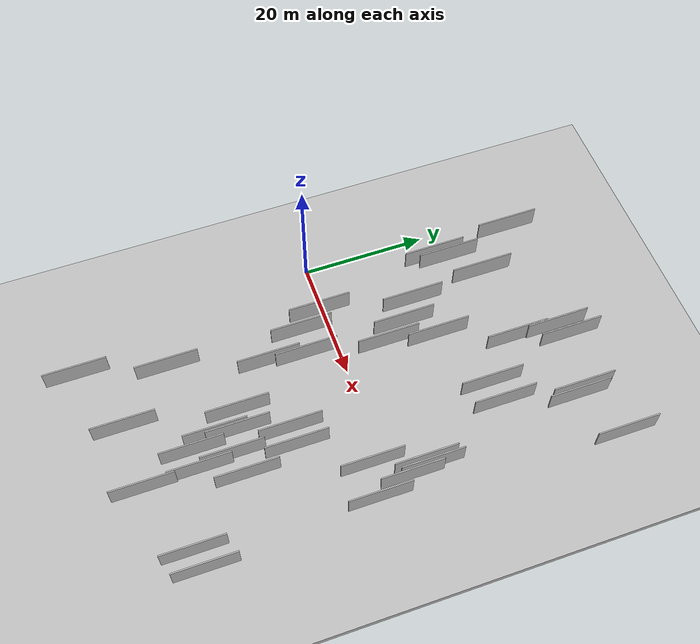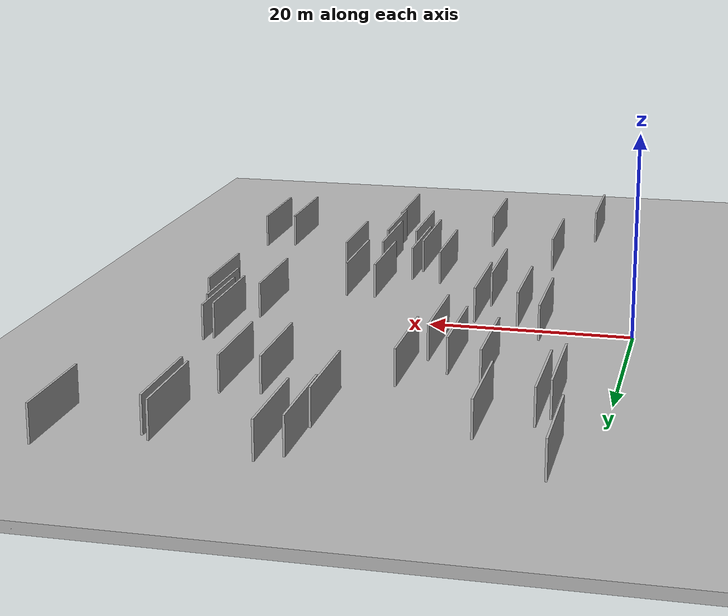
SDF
<?xml version="1.0" encoding="utf-8"?>

<sdf version="1.6">

   <world name="default">

      <gui fullscreen="0">

         <camera name="user_camera">

            <pose>-15 0 4.57585 0 0 0</pose>

            <view_controller>orbit</view_controller>

         </camera>

      </gui>

      <scene>

         <sky>

           <clouds>

             <speed>12</speed>

           </clouds>

         </sky>

         <ambient>0.4 0.4 0.4 1</ambient>

         <background>0.7 0.7 0.7 1</background>

         <shadows>1</shadows>

      </scene>

      <gravity>0 0 -9.8066</gravity>

      <magnetic_field>6e-06 2.3e-05 -4.2e-05</magnetic_field>

      <physics default="0" name="default_physics" type="ode">

         <ode>

            <solver>

               <type>quick</type>

               <iters>10</iters>

               <sor>1.0</sor>

               <use_dynamic_moi_rescaling>0</use_dynamic_moi_rescaling>

            </solver>

            <constraints>

               <cfm>0</cfm>

               <erp>0.2</erp>

               <contact_max_correcting_vel>100</contact_max_correcting_vel>

               <contact_surface_layer>0.001</contact_surface_layer>

            </constraints>

         </ode>

         <max_step_size>0.004</max_step_size>

         <real_time_factor>1</real_time_factor>

         <real_time_update_rate>250</real_time_update_rate>

      </physics>

      <light name="sun" type="directional">

         <cast_shadows>1</cast_shadows>

         <pose>0 0 10 0 0 0</pose>

         <diffuse>0.8 0.8 0.8 1</diffuse>

         <specular>0.2 0.2 0.2 1</specular>

         <attenuation>

            <range>1000</range>

            <constant>0.9</constant>

            <linear>0.01</linear>

            <quadratic>0.001</quadratic>

         </attenuation>

         <direction>-0.5 0.1 -0.9</direction>

      </light>

      <include>

         <name>ground_plane_1</name>

         <uri>model://HANNAS_ground_plane</uri>

         <pose>0 0 0  0 0 0</pose>

      </include>

      <include>

         <name>ground_plane_2</name>

         <uri>model://HANNAS_ground_plane</uri>

         <pose>100 0 0  0 0 0</pose>

      </include>

      <model name="HANNAS_wall_1">

         <static>1</static>

         <pose frame="">17.6452 7.7032 0.0 0.000000 0.000000 1.570796</pose>

         <link name="link">

            <pose frame="">0 0 2.00 0 0 0</pose>

            <collision name="collision">

               <geometry>

                  <box>

                     <size>10.00 0.2 4.00</size>

                  </box>

               </geometry>

               <max_contacts>10</max_contacts>

               <surface>

                  <contact>

                     <ode/>

                  </contact>

                  <bounce/>

                  <friction>

                     <torsional>

                        <ode/>

                     </torsional>

                     <ode/>

                  </friction>

               </surface>

            </collision>

            <visual name="visual">

               <cast_shadows>0</cast_shadows>

               <geometry>

                  <box>

                     <size>10.00 0.2 4.00</size>

                  </box>

               </geometry>

               <material>

                  <script>

                     <uri>model://HANNAS_wall/materials/scripts</uri>

                     <uri>model://HANNAS_wall/materials/textures</uri>

                     <name>vrc/HANNAS_wall</name>

                  </script>

               </material>

            </visual>

            <self_collide>0</self_collide>

            <enable_wind>0</enable_wind>

            <kinematic>0</kinematic>

         </link>

      </model>

      <model name="HANNAS_wall_2">

         <static>1</static>

         <pose frame="">29.3369 -34.7402 0.0 0.000000 0.000000 1.570796</pose>

         <link name="link">

            <pose frame="">0 0 2.00 0 0 0</pose>

            <collision name="collision">

               <geometry>

                  <box>

                     <size>10.00 0.2 4.00</size>

                  </box>

               </geometry>

               <max_contacts>10</max_contacts>

               <surface>

                  <contact>

                     <ode/>

                  </contact>

                  <bounce/>

                  <friction>

                     <torsional>

                        <ode/>

                     </torsional>

                     <ode/>

                  </friction>

               </surface>

            </collision>

            <visual name="visual">

               <cast_shadows>0</cast_shadows>

               <geometry>

                  <box>

                     <size>10.00 0.2 4.00</size>

                  </box>

               </geometry>

               <material>

                  <script>

                     <uri>model://HANNAS_wall/materials/scripts</uri>

                     <uri>model://HANNAS_wall/materials/textures</uri>

                     <name>vrc/HANNAS_wall</name>

                  </script>

               </material>

            </visual>

            <self_collide>0</self_collide>

            <enable_wind>0</enable_wind>

            <kinematic>0</kinematic>

         </link>

      </model>

      <model name="HANNAS_wall_3">

         <static>1</static>

         <pose frame="">10.5927 -26.1240 0.0 0.000000 0.000000 1.570796</pose>

         <link name="link">

            <pose frame="">0 0 2.00 0 0 0</pose>

            <collision name="collision">

               <geometry>

                  <box>

                     <size>10.00 0.2 4.00</size>

                  </box>

               </geometry>

               <max_contacts>10</max_contacts>

               <surface>

                  <contact>

                     <ode/>

                  </contact>

                  <bounce/>

                  <friction>

                     <torsional>

                        <ode/>

                     </torsional>

                     <ode/>

                  </friction>

               </surface>

            </collision>

            <visual name="visual">

               <cast_shadows>0</cast_shadows>

               <geometry>

                  <box>

                     <size>10.00 0.2 4.00</size>

                  </box>

               </geometry>

               <material>

                  <script>

                     <uri>model://HANNAS_wall/materials/scripts</uri>

                     <uri>model://HANNAS_wall/materials/textures</uri>

                     <name>vrc/HANNAS_wall</name>

                  </script>

               </material>

            </visual>

            <self_collide>0</self_collide>

            <enable_wind>0</enable_wind>

            <kinematic>0</kinematic>

         </link>

      </model>

      <model name="HANNAS_wall_4">

         <static>1</static>

         <pose frame="">39.8284 6.3631 0.0 0.000000 0.000000 1.570796</pose>

         <link name="link">

            <pose frame="">0 0 2.00 0 0 0</pose>

            <collision name="collision">

               <geometry>

                  <box>

                     <size>10.00 0.2 4.00</size>

                  </box>

               </geometry>

               <max_contacts>10</max_contacts>

               <surface>

                  <contact>

                     <ode/>

                  </contact>

                  <bounce/>

                  <friction>

                     <torsional>

                        <ode/>

                     </torsional>

                     <ode/>

                  </friction>

               </surface>

            </collision>

            <visual name="visual">

               <cast_shadows>0</cast_shadows>

               <geometry>

                  <box>

                     <size>10.00 0.2 4.00</size>

                  </box>

               </geometry>

               <material>

                  <script>

                     <uri>model://HANNAS_wall/materials/scripts</uri>

                     <uri>model://HANNAS_wall/materials/textures</uri>

                     <name>vrc/HANNAS_wall</name>

                  </script>

               </material>

            </visual>

            <self_collide>0</self_collide>

            <enable_wind>0</enable_wind>

            <kinematic>0</kinematic>

         </link>

      </model>

      <model name="HANNAS_wall_5">

         <static>1</static>

         <pose frame="">11.6787 14.0342 0.0 0.000000 0.000000 1.570796</pose>

         <link name="link">

            <pose frame="">0 0 2.00 0 0 0</pose>

            <collision name="collision">

               <geometry>

                  <box>

                     <size>10.00 0.2 4.00</size>

                  </box>

               </geometry>

               <max_contacts>10</max_contacts>

               <surface>

                  <contact>

                     <ode/>

                  </contact>

                  <bounce/>

                  <friction>

                     <torsional>

                        <ode/>

                     </torsional>

                     <ode/>

                  </friction>

               </surface>

            </collision>

            <visual name="visual">

               <cast_shadows>0</cast_shadows>

               <geometry>

                  <box>

                     <size>10.00 0.2 4.00</size>

                  </box>

               </geometry>

               <material>

                  <script>

                     <uri>model://HANNAS_wall/materials/scripts</uri>

                     <uri>model://HANNAS_wall/materials/textures</uri>

                     <name>vrc/HANNAS_wall</name>

                  </script>

               </material>

            </visual>

            <self_collide>0</self_collide>

            <enable_wind>0</enable_wind>

            <kinematic>0</kinematic>

         </link>

      </model>

      <model name="HANNAS_wall_6">

         <static>1</static>

         <pose frame="">7.2772 -39.6710 0.0 0.000000 0.000000 1.570796</pose>

         <link name="link">

            <pose frame="">0 0 2.00 0 0 0</pose>

            <collision name="collision">

               <geometry>

                  <box>

                     <size>10.00 0.2 4.00</size>

                  </box>

               </geometry>

               <max_contacts>10</max_contacts>

               <surface>

                  <contact>

                     <ode/>

                  </contact>

                  <bounce/>

                  <friction>

                     <torsional>

                        <ode/>

                     </torsional>

                     <ode/>

                  </friction>

               </surface>

            </collision>

            <visual name="visual">

               <cast_shadows>0</cast_shadows>

               <geometry>

                  <box>

                     <size>10.00 0.2 4.00</size>

                  </box>

               </geometry>

               <material>

                  <script>

                     <uri>model://HANNAS_wall/materials/scripts</uri>

                     <uri>model://HANNAS_wall/materials/textures</uri>

                     <name>vrc/HANNAS_wall</name>

                  </script>

               </material>

            </visual>

            <self_collide>0</self_collide>

            <enable_wind>0</enable_wind>

            <kinematic>0</kinematic>

         </link>

      </model>

      <model name="HANNAS_wall_7">

         <static>1</static>

         <pose frame="">27.1532 -11.4824 0.0 0.000000 0.000000 1.570796</pose>

         <link name="link">

            <pose frame="">0 0 2.00 0 0 0</pose>

            <collision name="collision">

               <geometry>

                  <box>

                     <size>10.00 0.2 4.00</size>

                  </box>

               </geometry>

               <max_contacts>10</max_contacts>

               <surface>

                  <contact>

                     <ode/>

                  </contact>

                  <bounce/>

                  <friction>

                     <torsional>

                        <ode/>

                     </torsional>

                     <ode/>

                  </friction>

               </surface>

            </collision>

            <visual name="visual">

               <cast_shadows>0</cast_shadows>

               <geometry>

                  <box>

                     <size>10.00 0.2 4.00</size>

                  </box>

               </geometry>

               <material>

                  <script>

                     <uri>model://HANNAS_wall/materials/scripts</uri>

                     <uri>model://HANNAS_wall/materials/textures</uri>

                     <name>vrc/HANNAS_wall</name>

                  </script>

               </material>

            </visual>

            <self_collide>0</self_collide>

            <enable_wind>0</enable_wind>

            <kinematic>0</kinematic>

         </link>

      </model>

      <model name="HANNAS_wall_8">

         <static>1</static>

         <pose frame="">21.5751 -18.0742 0.0 0.000000 0.000000 1.570796</pose>

         <link name="link">

            <pose frame="">0 0 2.00 0 0 0</pose>

            <collision name="collision">

               <geometry>

                  <box>

                     <size>10.00 0.2 4.00</size>

                  </box>

               </geometry>

               <max_contacts>10</max_contacts>

               <surface>

                  <contact>

                     <ode/>

                  </contact>

                  <bounce/>

                  <friction>

                     <torsional>

                        <ode/>

                     </torsional>

                     <ode/>

                  </friction>

               </surface>

            </collision>

            <visual name="visual">

               <cast_shadows>0</cast_shadows>

               <geometry>

                  <box>

                     <size>10.00 0.2 4.00</size>

                  </box>

               </geometry>

               <material>

                  <script>

                     <uri>model://HANNAS_wall/materials/scripts</uri>

                     <uri>model://HANNAS_wall/materials/textures</uri>

                     <name>vrc/HANNAS_wall</name>

                  </script>

               </material>

            </visual>

            <self_collide>0</self_collide>

            <enable_wind>0</enable_wind>

            <kinematic>0</kinematic>

         </link>

      </model>

      <model name="HANNAS_wall_9">

         <static>1</static>

         <pose frame="">24.7497 -18.9632 0.0 0.000000 0.000000 1.570796</pose>

         <link name="link">

            <pose frame="">0 0 2.00 0 0 0</pose>

            <collision name="collision">

               <geometry>

                  <box>

                     <size>10.00 0.2 4.00</size>

                  </box>

               </geometry>

               <max_contacts>10</max_contacts>

               <surface>

                  <contact>

                     <ode/>

                  </contact>

                  <bounce/>

                  <friction>

                     <torsional>

                        <ode/>

                     </torsional>

                     <ode/>

                  </friction>

               </surface>

            </collision>

            <visual name="visual">

               <cast_shadows>0</cast_shadows>

               <geometry>

                  <box>

                     <size>10.00 0.2 4.00</size>

                  </box>

               </geometry>

               <material>

                  <script>

                     <uri>model://HANNAS_wall/materials/scripts</uri>

                     <uri>model://HANNAS_wall/materials/textures</uri>

                     <name>vrc/HANNAS_wall</name>

                  </script>

               </material>

            </visual>

            <self_collide>0</self_collide>

            <enable_wind>0</enable_wind>

            <kinematic>0</kinematic>

         </link>

      </model>

      <model name="HANNAS_wall_10">

         <static>1</static>

         <pose frame="">3.2504 34.0008 0.0 0.000000 0.000000 1.570796</pose>

         <link name="link">

            <pose frame="">0 0 2.00 0 0 0</pose>

            <collision name="collision">

               <geometry>

                  <box>

                     <size>10.00 0.2 4.00</size>

                  </box>

               </geometry>

               <max_contacts>10</max_contacts>

               <surface>

                  <contact>

                     <ode/>

                  </contact>

                  <bounce/>

                  <friction>

                     <torsional>

                        <ode/>

                     </torsional>

                     <ode/>

                  </friction>

               </surface>

            </collision>

            <visual name="visual">

               <cast_shadows>0</cast_shadows>

               <geometry>

                  <box>

                     <size>10.00 0.2 4.00</size>

                  </box>

               </geometry>

               <material>

                  <script>

                     <uri>model://HANNAS_wall/materials/scripts</uri>

                     <uri>model://HANNAS_wall/materials/textures</uri>

                     <name>vrc/HANNAS_wall</name>

                  </script>

               </material>

            </visual>

            <self_collide>0</self_collide>

            <enable_wind>0</enable_wind>

            <kinematic>0</kinematic>

         </link>

      </model>

      <model name="HANNAS_wall_11">

         <static>1</static>

         <pose frame="">24.2632 -22.3150 0.0 0.000000 0.000000 1.570796</pose>

         <link name="link">

            <pose frame="">0 0 2.00 0 0 0</pose>

            <collision name="collision">

               <geometry>

                  <box>

                     <size>10.00 0.2 4.00</size>

                  </box>

               </geometry>

               <max_contacts>10</max_contacts>

               <surface>

                  <contact>

                     <ode/>

                  </contact>

                  <bounce/>

                  <friction>

                     <torsional>

                        <ode/>

                     </torsional>

                     <ode/>

                  </friction>

               </surface>

            </collision>

            <visual name="visual">

               <cast_shadows>0</cast_shadows>

               <geometry>

                  <box>

                     <size>10.00 0.2 4.00</size>

                  </box>

               </geometry>

               <material>

                  <script>

                     <uri>model://HANNAS_wall/materials/scripts</uri>

                     <uri>model://HANNAS_wall/materials/textures</uri>

                     <name>vrc/HANNAS_wall</name>

                  </script>

               </material>

            </visual>

            <self_collide>0</self_collide>

            <enable_wind>0</enable_wind>

            <kinematic>0</kinematic>

         </link>

      </model>

      <model name="HANNAS_wall_12">

         <static>1</static>

         <pose frame="">41.0573 -30.3732 0.0 0.000000 0.000000 1.570796</pose>

         <link name="link">

            <pose frame="">0 0 2.00 0 0 0</pose>

            <collision name="collision">

               <geometry>

                  <box>

                     <size>10.00 0.2 4.00</size>

                  </box>

               </geometry>

               <max_contacts>10</max_contacts>

               <surface>

                  <contact>

                     <ode/>

                  </contact>

                  <bounce/>

                  <friction>

                     <torsional>

                        <ode/>

                     </torsional>

                     <ode/>

                  </friction>

               </surface>

            </collision>

            <visual name="visual">

               <cast_shadows>0</cast_shadows>

               <geometry>

                  <box>

                     <size>10.00 0.2 4.00</size>

                  </box>

               </geometry>

               <material>

                  <script>

                     <uri>model://HANNAS_wall/materials/scripts</uri>

                     <uri>model://HANNAS_wall/materials/textures</uri>

                     <name>vrc/HANNAS_wall</name>

                  </script>

               </material>

            </visual>

            <self_collide>0</self_collide>

            <enable_wind>0</enable_wind>

            <kinematic>0</kinematic>

         </link>

      </model>

      <model name="HANNAS_wall_13">

         <static>1</static>

         <pose frame="">25.8757 -26.3739 0.0 0.000000 0.000000 1.570796</pose>

         <link name="link">

            <pose frame="">0 0 2.00 0 0 0</pose>

            <collision name="collision">

               <geometry>

                  <box>

                     <size>10.00 0.2 4.00</size>

                  </box>

               </geometry>

               <max_contacts>10</max_contacts>

               <surface>

                  <contact>

                     <ode/>

                  </contact>

                  <bounce/>

                  <friction>

                     <torsional>

                        <ode/>

                     </torsional>

                     <ode/>

                  </friction>

               </surface>

            </collision>

            <visual name="visual">

               <cast_shadows>0</cast_shadows>

               <geometry>

                  <box>

                     <size>10.00 0.2 4.00</size>

                  </box>

               </geometry>

               <material>

                  <script>

                     <uri>model://HANNAS_wall/materials/scripts</uri>

                     <uri>model://HANNAS_wall/materials/textures</uri>

                     <name>vrc/HANNAS_wall</name>

                  </script>

               </material>

            </visual>

            <self_collide>0</self_collide>

            <enable_wind>0</enable_wind>

            <kinematic>0</kinematic>

         </link>

      </model>

      <model name="HANNAS_wall_14">

         <static>1</static>

         <pose frame="">44.5203 35.6101 0.0 0.000000 0.000000 1.570796</pose>

         <link name="link">

            <pose frame="">0 0 2.00 0 0 0</pose>

            <collision name="collision">

               <geometry>

                  <box>

                     <size>10.00 0.2 4.00</size>

                  </box>

               </geometry>

               <max_contacts>10</max_contacts>

               <surface>

                  <contact>

                     <ode/>

                  </contact>

                  <bounce/>

                  <friction>

                     <torsional>

                        <ode/>

                     </torsional>

                     <ode/>

                  </friction>

               </surface>

            </collision>

            <visual name="visual">

               <cast_shadows>0</cast_shadows>

               <geometry>

                  <box>

                     <size>10.00 0.2 4.00</size>

                  </box>

               </geometry>

               <material>

                  <script>

                     <uri>model://HANNAS_wall/materials/scripts</uri>

                     <uri>model://HANNAS_wall/materials/textures</uri>

                     <name>vrc/HANNAS_wall</name>

                  </script>

               </material>

            </visual>

            <self_collide>0</self_collide>

            <enable_wind>0</enable_wind>

            <kinematic>0</kinematic>

         </link>

      </model>

      <model name="HANNAS_wall_15">

         <static>1</static>

         <pose frame="">33.5682 20.5417 0.0 0.000000 0.000000 1.570796</pose>

         <link name="link">

            <pose frame="">0 0 2.00 0 0 0</pose>

            <collision name="collision">

               <geometry>

                  <box>

                     <size>10.00 0.2 4.00</size>

                  </box>

               </geometry>

               <max_contacts>10</max_contacts>

               <surface>

                  <contact>

                     <ode/>

                  </contact>

                  <bounce/>

                  <friction>

                     <torsional>

                        <ode/>

                     </torsional>

                     <ode/>

                  </friction>

               </surface>

            </collision>

            <visual name="visual">

               <cast_shadows>0</cast_shadows>

               <geometry>

                  <box>

                     <size>10.00 0.2 4.00</size>

                  </box>

               </geometry>

               <material>

                  <script>

                     <uri>model://HANNAS_wall/materials/scripts</uri>

                     <uri>model://HANNAS_wall/materials/textures</uri>

                     <name>vrc/HANNAS_wall</name>

                  </script>

               </material>

            </visual>

            <self_collide>0</self_collide>

            <enable_wind>0</enable_wind>

            <kinematic>0</kinematic>

         </link>

      </model>

      <model name="HANNAS_wall_16">

         <static>1</static>

         <pose frame="">23.6345 26.9207 0.0 0.000000 0.000000 1.570796</pose>

         <link name="link">

            <pose frame="">0 0 2.00 0 0 0</pose>

            <collision name="collision">

               <geometry>

                  <box>

                     <size>10.00 0.2 4.00</size>

                  </box>

               </geometry>

               <max_contacts>10</max_contacts>

               <surface>

                  <contact>

                     <ode/>

                  </contact>

                  <bounce/>

                  <friction>

                     <torsional>

                        <ode/>

                     </torsional>

                     <ode/>

                  </friction>

               </surface>

            </collision>

            <visual name="visual">

               <cast_shadows>0</cast_shadows>

               <geometry>

                  <box>

                     <size>10.00 0.2 4.00</size>

                  </box>

               </geometry>

               <material>

                  <script>

                     <uri>model://HANNAS_wall/materials/scripts</uri>

                     <uri>model://HANNAS_wall/materials/textures</uri>

                     <name>vrc/HANNAS_wall</name>

                  </script>

               </material>

            </visual>

            <self_collide>0</self_collide>

            <enable_wind>0</enable_wind>

            <kinematic>0</kinematic>

         </link>

      </model>

      <model name="HANNAS_wall_17">

         <static>1</static>

         <pose frame="">38.9944 5.6260 0.0 0.000000 0.000000 1.570796</pose>

         <link name="link">

            <pose frame="">0 0 2.00 0 0 0</pose>

            <collision name="collision">

               <geometry>

                  <box>

                     <size>10.00 0.2 4.00</size>

                  </box>

               </geometry>

               <max_contacts>10</max_contacts>

               <surface>

                  <contact>

                     <ode/>

                  </contact>

                  <bounce/>

                  <friction>

                     <torsional>

                        <ode/>

                     </torsional>

                     <ode/>

                  </friction>

               </surface>

            </collision>

            <visual name="visual">

               <cast_shadows>0</cast_shadows>

               <geometry>

                  <box>

                     <size>10.00 0.2 4.00</size>

                  </box>

               </geometry>

               <material>

                  <script>

                     <uri>model://HANNAS_wall/materials/scripts</uri>

                     <uri>model://HANNAS_wall/materials/textures</uri>

                     <name>vrc/HANNAS_wall</name>

                  </script>

               </material>

            </visual>

            <self_collide>0</self_collide>

            <enable_wind>0</enable_wind>

            <kinematic>0</kinematic>

         </link>

      </model>

      <model name="HANNAS_wall_18">

         <static>1</static>

         <pose frame="">36.6726 -1.9402 0.0 0.000000 0.000000 1.570796</pose>

         <link name="link">

            <pose frame="">0 0 2.00 0 0 0</pose>

            <collision name="collision">

               <geometry>

                  <box>

                     <size>10.00 0.2 4.00</size>

                  </box>

               </geometry>

               <max_contacts>10</max_contacts>

               <surface>

                  <contact>

                     <ode/>

                  </contact>

                  <bounce/>

                  <friction>

                     <torsional>

                        <ode/>

                     </torsional>

                     <ode/>

                  </friction>

               </surface>

            </collision>

            <visual name="visual">

               <cast_shadows>0</cast_shadows>

               <geometry>

                  <box>

                     <size>10.00 0.2 4.00</size>

                  </box>

               </geometry>

               <material>

                  <script>

                     <uri>model://HANNAS_wall/materials/scripts</uri>

                     <uri>model://HANNAS_wall/materials/textures</uri>

                     <name>vrc/HANNAS_wall</name>

                  </script>

               </material>

            </visual>

            <self_collide>0</self_collide>

            <enable_wind>0</enable_wind>

            <kinematic>0</kinematic>

         </link>

      </model>

      <model name="HANNAS_wall_19">

         <static>1</static>

         <pose frame="">36.4396 31.6796 0.0 0.000000 0.000000 1.570796</pose>

         <link name="link">

            <pose frame="">0 0 2.00 0 0 0</pose>

            <collision name="collision">

               <geometry>

                  <box>

                     <size>10.00 0.2 4.00</size>

                  </box>

               </geometry>

               <max_contacts>10</max_contacts>

               <surface>

                  <contact>

                     <ode/>

                  </contact>

                  <bounce/>

                  <friction>

                     <torsional>

                        <ode/>

                     </torsional>

                     <ode/>

                  </friction>

               </surface>

            </collision>

            <visual name="visual">

               <cast_shadows>0</cast_shadows>

               <geometry>

                  <box>

                     <size>10.00 0.2 4.00</size>

                  </box>

               </geometry>

               <material>

                  <script>

                     <uri>model://HANNAS_wall/materials/scripts</uri>

                     <uri>model://HANNAS_wall/materials/textures</uri>

                     <name>vrc/HANNAS_wall</name>

                  </script>

               </material>

            </visual>

            <self_collide>0</self_collide>

            <enable_wind>0</enable_wind>

            <kinematic>0</kinematic>

         </link>

      </model>

      <model name="HANNAS_wall_20">

         <static>1</static>

         <pose frame="">44.1261 -29.4959 0.0 0.000000 0.000000 1.570796</pose>

         <link name="link">

            <pose frame="">0 0 2.00 0 0 0</pose>

            <collision name="collision">

               <geometry>

                  <box>

                     <size>10.00 0.2 4.00</size>

                  </box>

               </geometry>

               <max_contacts>10</max_contacts>

               <surface>

                  <contact>

                     <ode/>

                  </contact>

                  <bounce/>

                  <friction>

                     <torsional>

                        <ode/>

                     </torsional>

                     <ode/>

                  </friction>

               </surface>

            </collision>

            <visual name="visual">

               <cast_shadows>0</cast_shadows>

               <geometry>

                  <box>

                     <size>10.00 0.2 4.00</size>

                  </box>

               </geometry>

               <material>

                  <script>

                     <uri>model://HANNAS_wall/materials/scripts</uri>

                     <uri>model://HANNAS_wall/materials/textures</uri>

                     <name>vrc/HANNAS_wall</name>

                  </script>

               </material>

            </visual>

            <self_collide>0</self_collide>

            <enable_wind>0</enable_wind>

            <kinematic>0</kinematic>

         </link>

      </model>

      <model name="HANNAS_wall_21">

         <static>1</static>

         <pose frame="">29.9358 19.9670 0.0 0.000000 0.000000 1.570796</pose>

         <link name="link">

            <pose frame="">0 0 2.00 0 0 0</pose>

            <collision name="collision">

               <geometry>

                  <box>

                     <size>10.00 0.2 4.00</size>

                  </box>

               </geometry>

               <max_contacts>10</max_contacts>

               <surface>

                  <contact>

                     <ode/>

                  </contact>

                  <bounce/>

                  <friction>

                     <torsional>

                        <ode/>

                     </torsional>

                     <ode/>

                  </friction>

               </surface>

            </collision>

            <visual name="visual">

               <cast_shadows>0</cast_shadows>

               <geometry>

                  <box>

                     <size>10.00 0.2 4.00</size>

                  </box>

               </geometry>

               <material>

                  <script>

                     <uri>model://HANNAS_wall/materials/scripts</uri>

                     <uri>model://HANNAS_wall/materials/textures</uri>

                     <name>vrc/HANNAS_wall</name>

                  </script>

               </material>

            </visual>

            <self_collide>0</self_collide>

            <enable_wind>0</enable_wind>

            <kinematic>0</kinematic>

         </link>

      </model>

      <model name="HANNAS_wall_22">

         <static>1</static>

         <pose frame="">11.2078 -4.4995 0.0 0.000000 0.000000 1.570796</pose>

         <link name="link">

            <pose frame="">0 0 2.00 0 0 0</pose>

            <collision name="collision">

               <geometry>

                  <box>

                     <size>10.00 0.2 4.00</size>

                  </box>

               </geometry>

               <max_contacts>10</max_contacts>

               <surface>

                  <contact>

                     <ode/>

                  </contact>

                  <bounce/>

                  <friction>

                     <torsional>

                        <ode/>

                     </torsional>

                     <ode/>

                  </friction>

               </surface>

            </collision>

            <visual name="visual">

               <cast_shadows>0</cast_shadows>

               <geometry>

                  <box>

                     <size>10.00 0.2 4.00</size>

                  </box>

               </geometry>

               <material>

                  <script>

                     <uri>model://HANNAS_wall/materials/scripts</uri>

                     <uri>model://HANNAS_wall/materials/textures</uri>

                     <name>vrc/HANNAS_wall</name>

                  </script>

               </material>

            </visual>

            <self_collide>0</self_collide>

            <enable_wind>0</enable_wind>

            <kinematic>0</kinematic>

         </link>

      </model>

      <model name="HANNAS_wall_23">

         <static>1</static>

         <pose frame="">15.5559 -5.1183 0.0 0.000000 0.000000 1.570796</pose>

         <link name="link">

            <pose frame="">0 0 2.00 0 0 0</pose>

            <collision name="collision">

               <geometry>

                  <box>

                     <size>10.00 0.2 4.00</size>

                  </box>

               </geometry>

               <max_contacts>10</max_contacts>

               <surface>

                  <contact>

                     <ode/>

                  </contact>

                  <bounce/>

                  <friction>

                     <torsional>

                        <ode/>

                     </torsional>

                     <ode/>

                  </friction>

               </surface>

            </collision>

            <visual name="visual">

               <cast_shadows>0</cast_shadows>

               <geometry>

                  <box>

                     <size>10.00 0.2 4.00</size>

                  </box>

               </geometry>

               <material>

                  <script>

                     <uri>model://HANNAS_wall/materials/scripts</uri>

                     <uri>model://HANNAS_wall/materials/textures</uri>

                     <name>vrc/HANNAS_wall</name>

                  </script>

               </material>

            </visual>

            <self_collide>0</self_collide>

            <enable_wind>0</enable_wind>

            <kinematic>0</kinematic>

         </link>

      </model>

      <model name="HANNAS_wall_24">

         <static>1</static>

         <pose frame="">32.2377 -19.7604 0.0 0.000000 0.000000 1.570796</pose>

         <link name="link">

            <pose frame="">0 0 2.00 0 0 0</pose>

            <collision name="collision">

               <geometry>

                  <box>

                     <size>10.00 0.2 4.00</size>

                  </box>

               </geometry>

               <max_contacts>10</max_contacts>

               <surface>

                  <contact>

                     <ode/>

                  </contact>

                  <bounce/>

                  <friction>

                     <torsional>

                        <ode/>

                     </torsional>

                     <ode/>

                  </friction>

               </surface>

            </collision>

            <visual name="visual">

               <cast_shadows>0</cast_shadows>

               <geometry>

                  <box>

                     <size>10.00 0.2 4.00</size>

                  </box>

               </geometry>

               <material>

                  <script>

                     <uri>model://HANNAS_wall/materials/scripts</uri>

                     <uri>model://HANNAS_wall/materials/textures</uri>

                     <name>vrc/HANNAS_wall</name>

                  </script>

               </material>

            </visual>

            <self_collide>0</self_collide>

            <enable_wind>0</enable_wind>

            <kinematic>0</kinematic>

         </link>

      </model>

      <model name="HANNAS_wall_25">

         <static>1</static>

         <pose frame="">40.5021 2.8963 0.0 0.000000 0.000000 1.570796</pose>

         <link name="link">

            <pose frame="">0 0 2.00 0 0 0</pose>

            <collision name="collision">

               <geometry>

                  <box>

                     <size>10.00 0.2 4.00</size>

                  </box>

               </geometry>

               <max_contacts>10</max_contacts>

               <surface>

                  <contact>

                     <ode/>

                  </contact>

                  <bounce/>

                  <friction>

                     <torsional>

                        <ode/>

                     </torsional>

                     <ode/>

                  </friction>

               </surface>

            </collision>

            <visual name="visual">

               <cast_shadows>0</cast_shadows>

               <geometry>

                  <box>

                     <size>10.00 0.2 4.00</size>

                  </box>

               </geometry>

               <material>

                  <script>

                     <uri>model://HANNAS_wall/materials/scripts</uri>

                     <uri>model://HANNAS_wall/materials/textures</uri>

                     <name>vrc/HANNAS_wall</name>

                  </script>

               </material>

            </visual>

            <self_collide>0</self_collide>

            <enable_wind>0</enable_wind>

            <kinematic>0</kinematic>

         </link>

      </model>

      <model name="HANNAS_wall_26">

         <static>1</static>

         <pose frame="">42.2327 -2.7268 0.0 0.000000 0.000000 1.570796</pose>

         <link name="link">

            <pose frame="">0 0 2.00 0 0 0</pose>

            <collision name="collision">

               <geometry>

                  <box>

                     <size>10.00 0.2 4.00</size>

                  </box>

               </geometry>

               <max_contacts>10</max_contacts>

               <surface>

                  <contact>

                     <ode/>

                  </contact>

                  <bounce/>

                  <friction>

                     <torsional>

                        <ode/>

                     </torsional>

                     <ode/>

                  </friction>

               </surface>

            </collision>

            <visual name="visual">

               <cast_shadows>0</cast_shadows>

               <geometry>

                  <box>

                     <size>10.00 0.2 4.00</size>

                  </box>

               </geometry>

               <material>

                  <script>

                     <uri>model://HANNAS_wall/materials/scripts</uri>

                     <uri>model://HANNAS_wall/materials/textures</uri>

                     <name>vrc/HANNAS_wall</name>

                  </script>

               </material>

            </visual>

            <self_collide>0</self_collide>

            <enable_wind>0</enable_wind>

            <kinematic>0</kinematic>

         </link>

      </model>

      <model name="HANNAS_wall_27">

         <static>1</static>

         <pose frame="">19.0448 15.4791 0.0 0.000000 0.000000 1.570796</pose>

         <link name="link">

            <pose frame="">0 0 2.00 0 0 0</pose>

            <collision name="collision">

               <geometry>

                  <box>

                     <size>10.00 0.2 4.00</size>

                  </box>

               </geometry>

               <max_contacts>10</max_contacts>

               <surface>

                  <contact>

                     <ode/>

                  </contact>

                  <bounce/>

                  <friction>

                     <torsional>

                        <ode/>

                     </torsional>

                     <ode/>

                  </friction>

               </surface>

            </collision>

            <visual name="visual">

               <cast_shadows>0</cast_shadows>

               <geometry>

                  <box>

                     <size>10.00 0.2 4.00</size>

                  </box>

               </geometry>

               <material>

                  <script>

                     <uri>model://HANNAS_wall/materials/scripts</uri>

                     <uri>model://HANNAS_wall/materials/textures</uri>

                     <name>vrc/HANNAS_wall</name>

                  </script>

               </material>

            </visual>

            <self_collide>0</self_collide>

            <enable_wind>0</enable_wind>

            <kinematic>0</kinematic>

         </link>

      </model>

      <model name="HANNAS_wall_28">

         <static>1</static>

         <pose frame="">35.5474 32.6762 0.0 0.000000 0.000000 1.570796</pose>

         <link name="link">

            <pose frame="">0 0 2.00 0 0 0</pose>

            <collision name="collision">

               <geometry>

                  <box>

                     <size>10.00 0.2 4.00</size>

                  </box>

               </geometry>

               <max_contacts>10</max_contacts>

               <surface>

                  <contact>

                     <ode/>

                  </contact>

                  <bounce/>

                  <friction>

                     <torsional>

                        <ode/>

                     </torsional>

                     <ode/>

                  </friction>

               </surface>

            </collision>

            <visual name="visual">

               <cast_shadows>0</cast_shadows>

               <geometry>

                  <box>

                     <size>10.00 0.2 4.00</size>

                  </box>

               </geometry>

               <material>

                  <script>

                     <uri>model://HANNAS_wall/materials/scripts</uri>

                     <uri>model://HANNAS_wall/materials/textures</uri>

                     <name>vrc/HANNAS_wall</name>

                  </script>

               </material>

            </visual>

            <self_collide>0</self_collide>

            <enable_wind>0</enable_wind>

            <kinematic>0</kinematic>

         </link>

      </model>

      <model name="HANNAS_wall_29">

         <static>1</static>

         <pose frame="">5.6789 22.6766 0.0 0.000000 0.000000 1.570796</pose>

         <link name="link">

            <pose frame="">0 0 2.00 0 0 0</pose>

            <collision name="collision">

               <geometry>

                  <box>

                     <size>10.00 0.2 4.00</size>

                  </box>

               </geometry>

               <max_contacts>10</max_contacts>

               <surface>

                  <contact>

                     <ode/>

                  </contact>

                  <bounce/>

                  <friction>

                     <torsional>

                        <ode/>

                     </torsional>

                     <ode/>

                  </friction>

               </surface>

            </collision>

            <visual name="visual">

               <cast_shadows>0</cast_shadows>

               <geometry>

                  <box>

                     <size>10.00 0.2 4.00</size>

                  </box>

               </geometry>

               <material>

                  <script>

                     <uri>model://HANNAS_wall/materials/scripts</uri>

                     <uri>model://HANNAS_wall/materials/textures</uri>

                     <name>vrc/HANNAS_wall</name>

                  </script>

               </material>

            </visual>

            <self_collide>0</self_collide>

            <enable_wind>0</enable_wind>

            <kinematic>0</kinematic>

         </link>

      </model>

      <model name="HANNAS_wall_30">

         <static>1</static>

         <pose frame="">10.2184 26.6279 0.0 0.000000 0.000000 1.570796</pose>

         <link name="link">

            <pose frame="">0 0 2.00 0 0 0</pose>

            <collision name="collision">

               <geometry>

                  <box>

                     <size>10.00 0.2 4.00</size>

                  </box>

               </geometry>

               <max_contacts>10</max_contacts>

               <surface>

                  <contact>

                     <ode/>

                  </contact>

                  <bounce/>

                  <friction>

                     <torsional>

                        <ode/>

                     </torsional>

                     <ode/>

                  </friction>

               </surface>

            </collision>

            <visual name="visual">

               <cast_shadows>0</cast_shadows>

               <geometry>

                  <box>

                     <size>10.00 0.2 4.00</size>

                  </box>

               </geometry>

               <material>

                  <script>

                     <uri>model://HANNAS_wall/materials/scripts</uri>

                     <uri>model://HANNAS_wall/materials/textures</uri>

                     <name>vrc/HANNAS_wall</name>

                  </script>

               </material>

            </visual>

            <self_collide>0</self_collide>

            <enable_wind>0</enable_wind>

            <kinematic>0</kinematic>

         </link>

      </model>

      <model name="HANNAS_wall_31">

         <static>1</static>

         <pose frame="">8.5668 -0.6362 0.0 0.000000 0.000000 1.570796</pose>

         <link name="link">

            <pose frame="">0 0 2.00 0 0 0</pose>

            <collision name="collision">

               <geometry>

                  <box>

                     <size>10.00 0.2 4.00</size>

                  </box>

               </geometry>

               <max_contacts>10</max_contacts>

               <surface>

                  <contact>

                     <ode/>

                  </contact>

                  <bounce/>

                  <friction>

                     <torsional>

                        <ode/>

                     </torsional>

                     <ode/>

                  </friction>

               </surface>

            </collision>

            <visual name="visual">

               <cast_shadows>0</cast_shadows>

               <geometry>

                  <box>

                     <size>10.00 0.2 4.00</size>

                  </box>

               </geometry>

               <material>

                  <script>

                     <uri>model://HANNAS_wall/materials/scripts</uri>

                     <uri>model://HANNAS_wall/materials/textures</uri>

                     <name>vrc/HANNAS_wall</name>

                  </script>

               </material>

            </visual>

            <self_collide>0</self_collide>

            <enable_wind>0</enable_wind>

            <kinematic>0</kinematic>

         </link>

      </model>

      <model name="HANNAS_wall_32">

         <static>1</static>

         <pose frame="">14.8521 -11.0126 0.0 0.000000 0.000000 1.570796</pose>

         <link name="link">

            <pose frame="">0 0 2.00 0 0 0</pose>

            <collision name="collision">

               <geometry>

                  <box>

                     <size>10.00 0.2 4.00</size>

                  </box>

               </geometry>

               <max_contacts>10</max_contacts>

               <surface>

                  <contact>

                     <ode/>

                  </contact>

                  <bounce/>

                  <friction>

                     <torsional>

                        <ode/>

                     </torsional>

                     <ode/>

                  </friction>

               </surface>

            </collision>

            <visual name="visual">

               <cast_shadows>0</cast_shadows>

               <geometry>

                  <box>

                     <size>10.00 0.2 4.00</size>

                  </box>

               </geometry>

               <material>

                  <script>

                     <uri>model://HANNAS_wall/materials/scripts</uri>

                     <uri>model://HANNAS_wall/materials/textures</uri>

                     <name>vrc/HANNAS_wall</name>

                  </script>

               </material>

            </visual>

            <self_collide>0</self_collide>

            <enable_wind>0</enable_wind>

            <kinematic>0</kinematic>

         </link>

      </model>

      <model name="HANNAS_wall_33">

         <static>1</static>

         <pose frame="">25.9767 35.0566 0.0 0.000000 0.000000 1.570796</pose>

         <link name="link">

            <pose frame="">0 0 2.00 0 0 0</pose>

            <collision name="collision">

               <geometry>

                  <box>

                     <size>10.00 0.2 4.00</size>

                  </box>

               </geometry>

               <max_contacts>10</max_contacts>

               <surface>

                  <contact>

                     <ode/>

                  </contact>

                  <bounce/>

                  <friction>

                     <torsional>

                        <ode/>

                     </torsional>

                     <ode/>

                  </friction>

               </surface>

            </collision>

            <visual name="visual">

               <cast_shadows>0</cast_shadows>

               <geometry>

                  <box>

                     <size>10.00 0.2 4.00</size>

                  </box>

               </geometry>

               <material>

                  <script>

                     <uri>model://HANNAS_wall/materials/scripts</uri>

                     <uri>model://HANNAS_wall/materials/textures</uri>

                     <name>vrc/HANNAS_wall</name>

                  </script>

               </material>

            </visual>

            <self_collide>0</self_collide>

            <enable_wind>0</enable_wind>

            <kinematic>0</kinematic>

         </link>

      </model>

      <model name="HANNAS_wall_34">

         <static>1</static>

         <pose frame="">15.1824 11.1846 0.0 0.000000 0.000000 1.570796</pose>

         <link name="link">

            <pose frame="">0 0 2.00 0 0 0</pose>

            <collision name="collision">

               <geometry>

                  <box>

                     <size>10.00 0.2 4.00</size>

                  </box>

               </geometry>

               <max_contacts>10</max_contacts>

               <surface>

                  <contact>

                     <ode/>

                  </contact>

                  <bounce/>

                  <friction>

                     <torsional>

                        <ode/>

                     </torsional>

                     <ode/>

                  </friction>

               </surface>

            </collision>

            <visual name="visual">

               <cast_shadows>0</cast_shadows>

               <geometry>

                  <box>

                     <size>10.00 0.2 4.00</size>

                  </box>

               </geometry>

               <material>

                  <script>

                     <uri>model://HANNAS_wall/materials/scripts</uri>

                     <uri>model://HANNAS_wall/materials/textures</uri>

                     <name>vrc/HANNAS_wall</name>

                  </script>

               </material>

            </visual>

            <self_collide>0</self_collide>

            <enable_wind>0</enable_wind>

            <kinematic>0</kinematic>

         </link>

      </model>

      <model name="HANNAS_wall_35">

         <static>1</static>

         <pose frame="">4.6229 20.5758 0.0 0.000000 0.000000 1.570796</pose>

         <link name="link">

            <pose frame="">0 0 2.00 0 0 0</pose>

            <collision name="collision">

               <geometry>

                  <box>

                     <size>10.00 0.2 4.00</size>

                  </box>

               </geometry>

               <max_contacts>10</max_contacts>

               <surface>

                  <contact>

                     <ode/>

                  </contact>

                  <bounce/>

                  <friction>

                     <torsional>

                        <ode/>

                     </torsional>

                     <ode/>

                  </friction>

               </surface>

            </collision>

            <visual name="visual">

               <cast_shadows>0</cast_shadows>

               <geometry>

                  <box>

                     <size>10.00 0.2 4.00</size>

                  </box>

               </geometry>

               <material>

                  <script>

                     <uri>model://HANNAS_wall/materials/scripts</uri>

                     <uri>model://HANNAS_wall/materials/textures</uri>

                     <name>vrc/HANNAS_wall</name>

                  </script>

               </material>

            </visual>

            <self_collide>0</self_collide>

            <enable_wind>0</enable_wind>

            <kinematic>0</kinematic>

         </link>

      </model>

      <model name="HANNAS_wall_36">

         <static>1</static>

         <pose frame="">28.4576 -20.8748 0.0 0.000000 0.000000 1.570796</pose>

         <link name="link">

            <pose frame="">0 0 2.00 0 0 0</pose>

            <collision name="collision">

               <geometry>

                  <box>

                     <size>10.00 0.2 4.00</size>

                  </box>

               </geometry>

               <max_contacts>10</max_contacts>

               <surface>

                  <contact>

                     <ode/>

                  </contact>

                  <bounce/>

                  <friction>

                     <torsional>

                        <ode/>

                     </torsional>

                     <ode/>

                  </friction>

               </surface>

            </collision>

            <visual name="visual">

               <cast_shadows>0</cast_shadows>

               <geometry>

                  <box>

                     <size>10.00 0.2 4.00</size>

                  </box>

               </geometry>

               <material>

                  <script>

                     <uri>model://HANNAS_wall/materials/scripts</uri>

                     <uri>model://HANNAS_wall/materials/textures</uri>

                     <name>vrc/HANNAS_wall</name>

                  </script>

               </material>

            </visual>

            <self_collide>0</self_collide>

            <enable_wind>0</enable_wind>

            <kinematic>0</kinematic>

         </link>

      </model>

      <model name="HANNAS_wall_37">

         <static>1</static>

         <pose frame="">23.8901 33.6496 0.0 0.000000 0.000000 1.570796</pose>

         <link name="link">

            <pose frame="">0 0 2.00 0 0 0</pose>

            <collision name="collision">

               <geometry>

                  <box>

                     <size>10.00 0.2 4.00</size>

                  </box>

               </geometry>

               <max_contacts>10</max_contacts>

               <surface>

                  <contact>

                     <ode/>

                  </contact>

                  <bounce/>

                  <friction>

                     <torsional>

                        <ode/>

                     </torsional>

                     <ode/>

                  </friction>

               </surface>

            </collision>

            <visual name="visual">

               <cast_shadows>0</cast_shadows>

               <geometry>

                  <box>

                     <size>10.00 0.2 4.00</size>

                  </box>

               </geometry>

               <material>

                  <script>

                     <uri>model://HANNAS_wall/materials/scripts</uri>

                     <uri>model://HANNAS_wall/materials/textures</uri>

                     <name>vrc/HANNAS_wall</name>

                  </script>

               </material>

            </visual>

            <self_collide>0</self_collide>

            <enable_wind>0</enable_wind>

            <kinematic>0</kinematic>

         </link>

      </model>

      <model name="HANNAS_wall_38">

         <static>1</static>

         <pose frame="">18.5889 -34.9168 0.0 0.000000 0.000000 1.570796</pose>

         <link name="link">

            <pose frame="">0 0 2.00 0 0 0</pose>

            <collision name="collision">

               <geometry>

                  <box>

                     <size>10.00 0.2 4.00</size>

                  </box>

               </geometry>

               <max_contacts>10</max_contacts>

               <surface>

                  <contact>

                     <ode/>

                  </contact>

                  <bounce/>

                  <friction>

                     <torsional>

                        <ode/>

                     </torsional>

                     <ode/>

                  </friction>

               </surface>

            </collision>

            <visual name="visual">

               <cast_shadows>0</cast_shadows>

               <geometry>

                  <box>

                     <size>10.00 0.2 4.00</size>

                  </box>

               </geometry>

               <material>

                  <script>

                     <uri>model://HANNAS_wall/materials/scripts</uri>

                     <uri>model://HANNAS_wall/materials/textures</uri>

                     <name>vrc/HANNAS_wall</name>

                  </script>

               </material>

            </visual>

            <self_collide>0</self_collide>

            <enable_wind>0</enable_wind>

            <kinematic>0</kinematic>

         </link>

      </model>

      <model name="HANNAS_wall_39">

         <static>1</static>

         <pose frame="">29.0801 -26.0718 0.0 0.000000 0.000000 1.570796</pose>

         <link name="link">

            <pose frame="">0 0 2.00 0 0 0</pose>

            <collision name="collision">

               <geometry>

                  <box>

                     <size>10.00 0.2 4.00</size>

                  </box>

               </geometry>

               <max_contacts>10</max_contacts>

               <surface>

                  <contact>

                     <ode/>

                  </contact>

                  <bounce/>

                  <friction>

                     <torsional>

                        <ode/>

                     </torsional>

                     <ode/>

                  </friction>

               </surface>

            </collision>

            <visual name="visual">

               <cast_shadows>0</cast_shadows>

               <geometry>

                  <box>

                     <size>10.00 0.2 4.00</size>

                  </box>

               </geometry>

               <material>

                  <script>

                     <uri>model://HANNAS_wall/materials/scripts</uri>

                     <uri>model://HANNAS_wall/materials/textures</uri>

                     <name>vrc/HANNAS_wall</name>

                  </script>

               </material>

            </visual>

            <self_collide>0</self_collide>

            <enable_wind>0</enable_wind>

            <kinematic>0</kinematic>

         </link>

      </model>

      <model name="HANNAS_wall_40">

         <static>1</static>

         <pose frame="">30.1443 -11.4546 0.0 0.000000 0.000000 1.570796</pose>

         <link name="link">

            <pose frame="">0 0 2.00 0 0 0</pose>

            <collision name="collision">

               <geometry>

                  <box>

                     <size>10.00 0.2 4.00</size>

                  </box>

               </geometry>

               <max_contacts>10</max_contacts>

               <surface>

                  <contact>

                     <ode/>

                  </contact>

                  <bounce/>

                  <friction>

                     <torsional>

                        <ode/>

                     </torsional>

                     <ode/>

                  </friction>

               </surface>

            </collision>

            <visual name="visual">

               <cast_shadows>0</cast_shadows>

               <geometry>

                  <box>

                     <size>10.00 0.2 4.00</size>

                  </box>

               </geometry>

               <material>

                  <script>

                     <uri>model://HANNAS_wall/materials/scripts</uri>

                     <uri>model://HANNAS_wall/materials/textures</uri>

                     <name>vrc/HANNAS_wall</name>

                  </script>

               </material>

            </visual>

            <self_collide>0</self_collide>

            <enable_wind>0</enable_wind>

            <kinematic>0</kinematic>

         </link>

      </model>

   </world>

</sdf>
